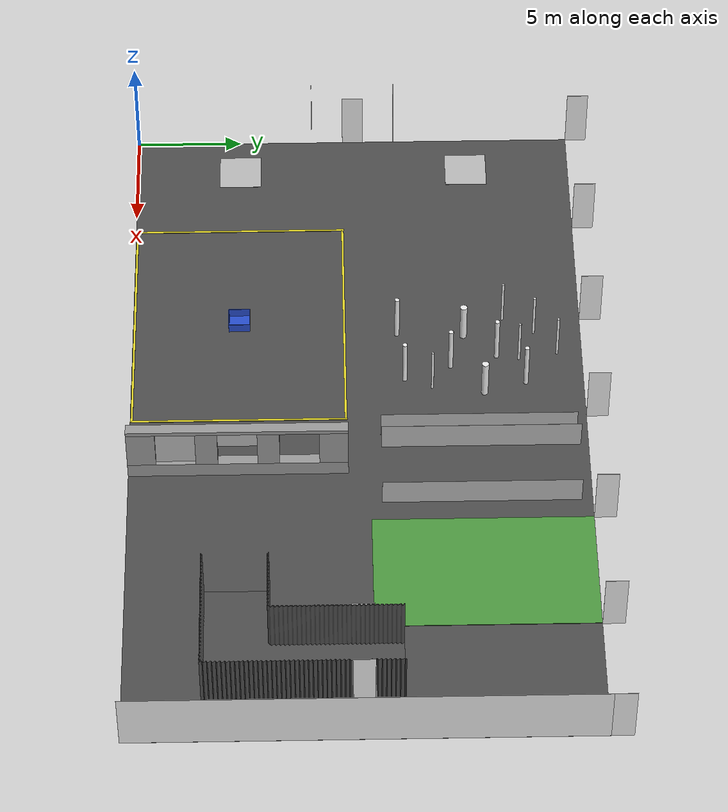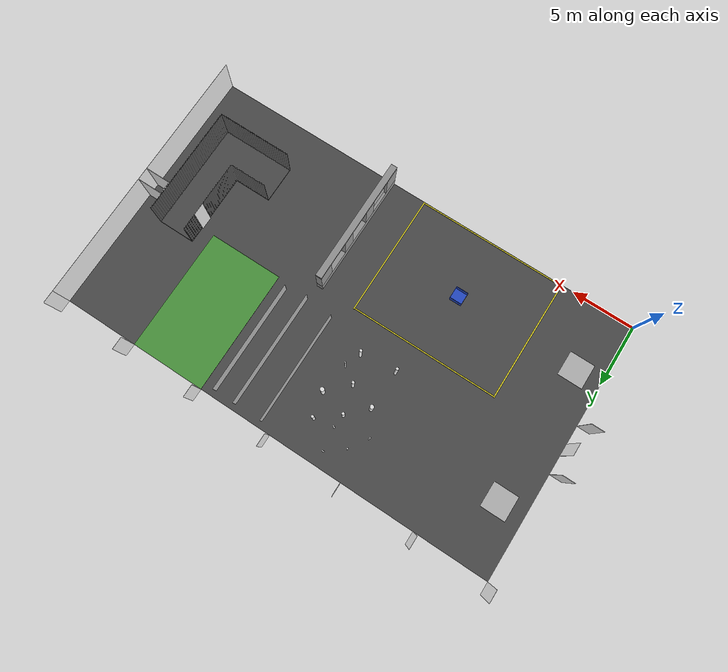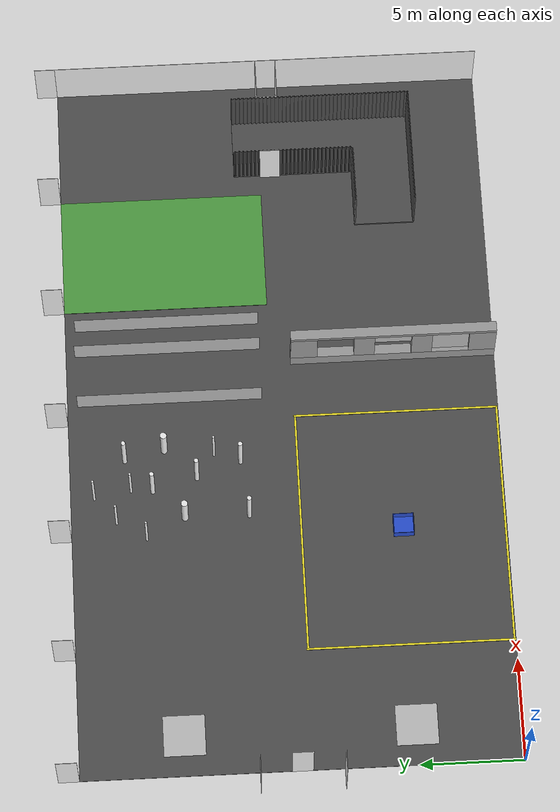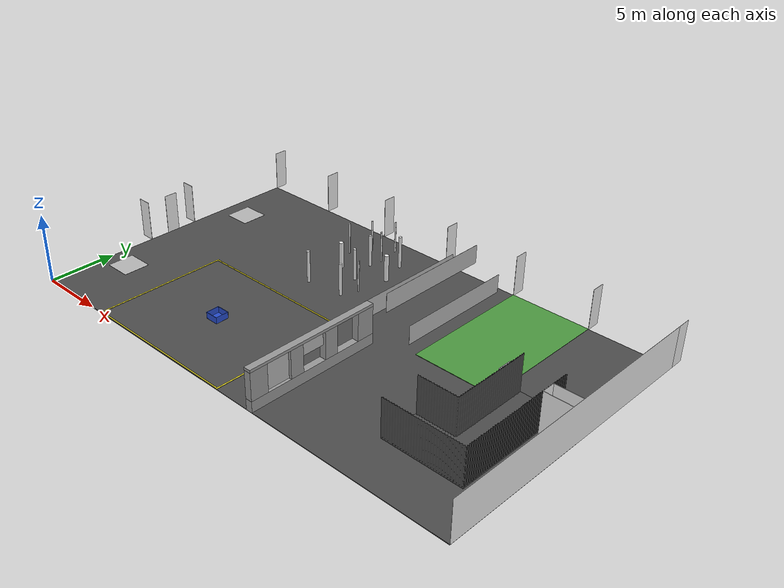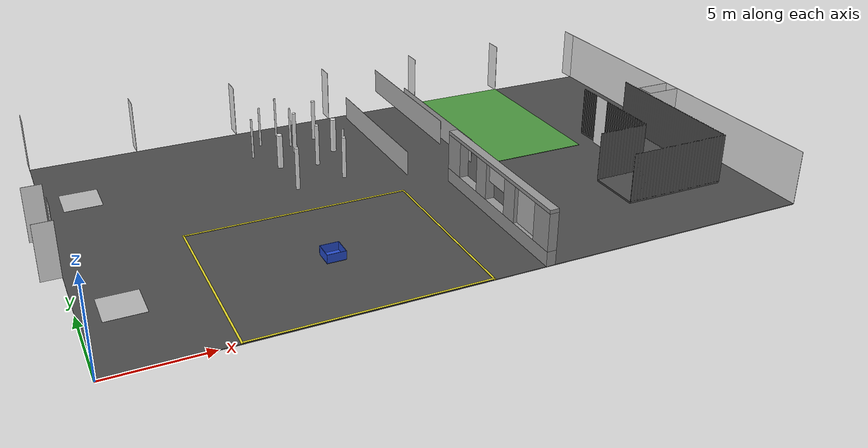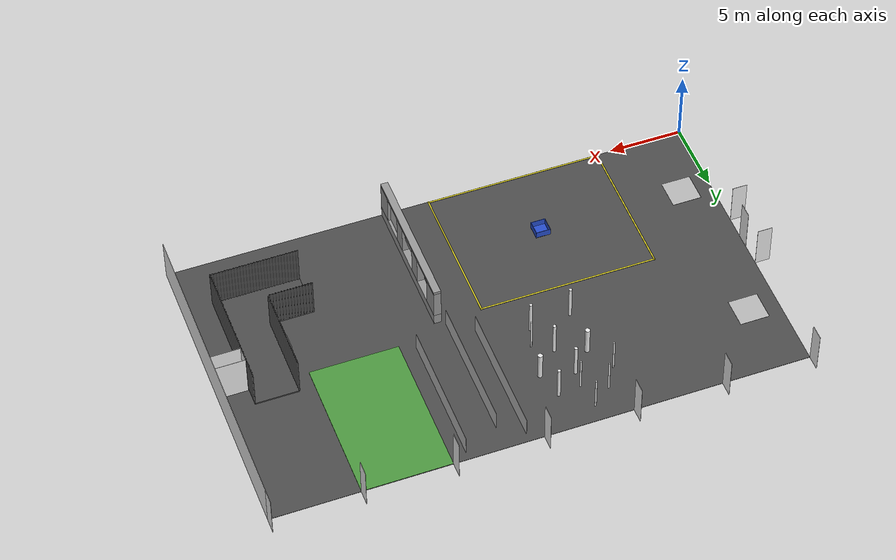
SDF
<sdf version="1.5">
 <world name="default">
  <scene><grid>false</grid><origin_visual>false</origin_visual></scene>
  <include><uri>model://sun</uri></include>
  <include><uri>model://AIGC2_ground</uri><pose>18.0 10.5 0.0 0 0 0</pose></include>
  <include><uri>model://AIGC2_start</uri><pose>2.0 16.0 0.0 0 0 0</pose></include>
  <include><uri>model://AIGC2_landing</uri><pose>2.0 5.0 0.0 0 0 0</pose></include>
  <include>
   <uri>model://AIGC2_wall_1m</uri>
   <name>AIGC2_wall_1m_1</name>
   <pose>0.0 10.5 0.0 0 0 -1.57079</pose>
  </include>
  <include>
   <uri>model://AIGC2_wall_1m</uri>
   <name>AIGC2_wall_1m_2</name>
   <pose>0.0 21.5 0.0 0 0 -1.57079</pose>
  </include>
  <include>
   <uri>model://AIGC2_wall_1m</uri>
   <name>AIGC2_wall_1m_3</name>
   <pose>6.0 21.5 0.0 0 0 -1.57079</pose>
  </include>
  <include>
   <uri>model://AIGC2_wall_1m</uri>
   <name>AIGC2_wall_1m_4</name>
   <pose>12.0 21.5 0.0 0 0 -1.57079</pose>
  </include>
  <include>
   <uri>model://AIGC2_wall_1m</uri>
   <name>AIGC2_wall_1m_5</name>
   <pose>18.0 21.5 0.0 0 0 -1.57079</pose>
  </include>
  <include>
   <uri>model://AIGC2_wall_1m</uri>
   <name>AIGC2_wall_1m_6</name>
   <pose>24.0 21.5 0.0 0 0 -1.57079</pose>
  </include>
  <include>
   <uri>model://AIGC2_wall_1m</uri>
   <name>AIGC2_wall_1m_7</name>
   <pose>30.0 21.5 0.0 0 0 -1.57079</pose>
  </include>
  <include>
   <uri>model://AIGC2_wall_1m</uri>
   <name>AIGC2_wall_1m_8</name>
   <pose>36.0 21.5 0.0 0 0 -1.57079</pose>
  </include>
  <include>
   <uri>model://AIGC2_wall_1m</uri>
   <name>AIGC2_wall_1m_9</name>
   <pose>31.0 10.5 0.0 0 0 -1.57079</pose>
  </include>
  <include>
   <uri>model://AIGC2_wall_1m</uri>
   <name>AIGC2_wall_1m_10</name>
   <pose>34.0 10.5 0.0 0 0 -1.57079</pose>
  </include>
  <include>
   <uri>model://AIGC2_wall_21m</uri>
   <name>AIGC2_wall_21m_1</name>
   <pose>36.0 10.5 0.0 0 0 -1.57079</pose>
  </include>
  <include>
   <uri>model://AIGC2_wall_2m</uri>
   <name>AIGC2_wall_2m_1</name>
   <pose>35.0 10.0 0.0 0 0 0</pose>
  </include>
  <include>
   <uri>model://AIGC2_wall_2m</uri>
   <name>AIGC2_wall_2m_2</name>
   <pose>35.0 11.0 0.0 0 0 0</pose>
  </include>
  <include>
   <uri>model://AIGC2_wall_1m</uri>
   <name>AIGC2_wall_1m_12</name>
   <pose>-0.5 12.5 0.0 0 0 0</pose>
  </include>
  <include>
   <uri>model://AIGC2_wall_1m</uri>
   <name>AIGC2_wall_1m_11</name>
   <pose>-0.5 8.5 0.0 0 0 0</pose>
  </include>
  <include>
   <uri>model://AIGC2_pole_30cm</uri>
   <name>AIGC2_pole_30cm_1</name>
   <pose>16.5 16.37 0.0 0 0 0</pose>
  </include>
  <include>
   <uri>model://AIGC2_pole_30cm</uri>
   <name>AIGC2_pole_30cm_2</name>
   <pose>12.96 15.5 0.0 0 0 0</pose>
  </include>
  <include>
   <uri>model://AIGC2_pole_20cm</uri>
   <name>AIGC2_pole_20cm_1</name>
   <pose>16.0 18.3 0.0 0 0 0</pose>
  </include>
  <include>
   <uri>model://AIGC2_pole_20cm</uri>
   <name>AIGC2_pole_20cm_2</name>
   <pose>14.35 17.0 0.0 0 0 0</pose>
  </include>
  <include>
   <uri>model://AIGC2_pole_20cm</uri>
   <name>AIGC2_pole_20cm_3</name>
   <pose>14.94 14.84 0.0 0 0 0</pose>
  </include>
  <include>
   <uri>model://AIGC2_pole_20cm</uri>
   <name>AIGC2_pole_20cm_4</name>
   <pose>15.7 12.69 0.0 0 0 0</pose>
  </include>
  <include>
   <uri>model://AIGC2_pole_20cm</uri>
   <name>AIGC2_pole_20cm_5</name>
   <pose>12.89 12.39 0.0 0 0 0</pose>
  </include>
  <include>
   <uri>model://AIGC2_pole_10cm</uri>
   <name>AIGC2_pole_10cm_1</name>
   <pose>11.93 17.37 0.0 0 0 0</pose>
  </include>
  <include>
   <uri>model://AIGC2_pole_10cm</uri>
   <name>AIGC2_pole_10cm_2</name>
   <pose>12.83 18.8 0.0 0 0 0</pose>
  </include>
  <include>
   <uri>model://AIGC2_pole_10cm</uri>
   <name>AIGC2_pole_10cm_3</name>
   <pose>16.15 13.96 0.0 0 0 0</pose>
  </include>
  <include>
   <uri>model://AIGC2_pole_10cm</uri>
   <name>AIGC2_pole_10cm_4</name>
   <pose>14.44 18.05 0.0 0 0 0</pose>
  </include>
  <include>
   <uri>model://AIGC2_pole_10cm</uri>
   <name>AIGC2_pole_10cm_5</name>
   <pose>14.14 19.84 0.0 0 0 0</pose>
  </include>
  <include><uri>model://AIGC2_net</uri><name>AIGCS_net_1</name><pose>23.0 16.0 0.0 0 0 0.0</pose></include>
  <include><uri>model://AIGC2_net</uri><name>AIGCS_net_2</name><pose>21.0 16.0 1.5 0 0 0.0</pose></include>
  <include><uri>model://AIGC2_net</uri><name>AIGCS_net_3</name><pose>19.0 16.0 0.0 0 0 0.0</pose></include>
  <include><uri>model://AIGC2_grass</uri><name>AIGCS_grass</name><pose>27.0 16.0 0.0 0 0 0.0</pose></include>
  <include>
   <uri>model://AIGC2_tunnel_2</uri>
   <name>AIGC2_tunnel</name>
   <pose>33.97 12.3 0.1 0 0 3.141592</pose>
  </include>
  <include><uri>model://AIGC2_window</uri><name>AIGC2_window</name><pose>21.0 5.0 0.0 0 0 0.0</pose></include>
  <include>
   <uri>model://AIGC2_window_glass</uri>
   <name>AIGC2_glass_1</name>
   <pose>21.0 2.2 0.8 0 0 0.0</pose>
  </include>
  <include>
   <uri>model://AIGC2_window_glass_half</uri>
   <name>AIGC2_glass_2</name>
   <pose>21.0 5.0 0.8 0 0 0.0</pose>
  </include>
  <include>
   <uri>model://AIGC2_wind_10m</uri>
   <name>AIGC2_wind_10m_1</name>
   <pose>12.0 9.925 0.0 0 0 0.0</pose>
  </include>
  <include>
   <uri>model://AIGC2_wind_10m</uri>
   <name>AIGC2_wind_10m_2</name>
   <pose>12.0 0.075 0.0 0 0 0.0</pose>
  </include>
  <include>
   <uri>model://AIGC2_wind_9m</uri>
   <name>AIGC2_wind_9m_1</name>
   <pose>18.0 5.0 0.0 0 0 0.0</pose>
  </include>
  <include>
   <uri>model://AIGC2_wind_9m</uri>
   <name>AIGC2_wind_9m_2</name>
   <pose>6.0 5.0 0.0 0 0 0.0</pose>
  </include>
  <include><uri>model://AIGC2_box</uri><name>AIGC2_box</name><pose>12.0 5.0 0.0 0 0 0.0</pose></include>
  <physics name="default_physics" default="0" type="ode">
   <gravity>0 0 -9.8066</gravity>
   <ode>
    <solver>
     <type>quick</type>
     <iters>10</iters>
     <sor>1.3</sor>
     <use_dynamic_moi_rescaling>0</use_dynamic_moi_rescaling>
    </solver>
    <constraints>
     <cfm>0</cfm>
     <erp>0.2</erp>
     <contact_max_correcting_vel>100</contact_max_correcting_vel>
     <contact_surface_layer>0.001</contact_surface_layer>
    </constraints>
   </ode>
   <max_step_size>0.004</max_step_size>
   <real_time_factor>1</real_time_factor>
   <real_time_update_rate>250</real_time_update_rate>
   <magnetic_field>6.0e-6 2.3e-5 -4.2e-5</magnetic_field>
  </physics>
 </world>
</sdf>

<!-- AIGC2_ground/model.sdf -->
<sdf version="1.5">
  <model name="AIGC2_ground">
    <static>true</static>
    <link name="link">
      <collision name="collision">
        <geometry>
          <box>
            <size>36 21 .04</size>
          </box>
        </geometry>
      </collision>
      <visual name="visual">
        <cast_shadows>false</cast_shadows>
        <geometry>
          <box>
            <size>36 21 .04</size>
          </box>
        </geometry>
        <material>
          <script>
            <uri>model://AIGC2_ground/materials/scripts</uri>
            <uri>model://AIGC2_ground/materials/textures</uri>
            <name>vrc/asphalt</name>
          </script>
        </material>
      </visual>
    </link>
  </model>
</sdf>

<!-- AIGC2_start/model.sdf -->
<sdf version="1.5">
  <model name="AIGC2_start">
    <static>true</static>
    <link name="link">
      <pose>0 0 0.0 0 0 0</pose>
      <collision name="collision">
        <geometry>
          <box>
            <size>2.0 2.0 0.05</size>
          </box>
        </geometry>
      </collision>
      <visual name="visual">
        <cast_shadows>false</cast_shadows>
        <geometry>
          <box>
            <size>2.0 2.0 0.05</size>
          </box>
        </geometry>
        <material>
          <script>
            <uri>model://AIGC2_start/materials/scripts</uri>
            <uri>model://AIGC2_start/materials/textures</uri>
            <name>vrc/start</name>
          </script>
        </material>
      </visual>
    </link>
  </model>
</sdf>

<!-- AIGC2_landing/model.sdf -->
<sdf version="1.5">
  <model name="AIGC2_landing">
    <static>true</static>
    <link name="link">
      <pose>0 0 0.0 0 0 0</pose>
      <collision name="collision">
        <geometry>
          <box>
            <size>2.0 2.0 0.05</size>
          </box>
        </geometry>
      </collision>
      <visual name="visual">
        <cast_shadows>false</cast_shadows>
        <geometry>
          <box>
            <size>2.0 2.0 0.05</size>
          </box>
        </geometry>
        <material>
          <script>
            <uri>model://AIGC2_landing/materials/scripts</uri>
            <uri>model://AIGC2_landing/materials/textures</uri>
            <name>vrc/landing</name>
          </script>
        </material>
      </visual>
    </link>
  </model>
</sdf>

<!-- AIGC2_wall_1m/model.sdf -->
<sdf version="1.5">
  <model name="AIGC2_wall_1m">
    <static>true</static>
    <link name="link">
      <pose>0 0 1.5 0 0 0</pose>
      <collision name="collision">
        <geometry>
          <box>
            <size>1.0 0.02 3.0</size>
          </box>
        </geometry>
      </collision>
      <visual name="visual">
        <cast_shadows>false</cast_shadows>
        <geometry>
          <box>
            <size>1.0 0.02 3.0</size>
          </box>
        </geometry>
        <material>
			<script>
				<name>Gazebo/White</name>
				<uri>file://media/materials/scripts/gazebo.material</uri>
			</script>
        </material>
      </visual>
    </link>
  </model>
</sdf>

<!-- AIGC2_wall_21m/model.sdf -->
<sdf version="1.5">
  <model name="AIGC2_wall_21m">
    <static>true</static>
    <link name="link">
      <pose>0 0 1.5 0 0 0</pose>
      <collision name="collision">
        <geometry>
          <box>
            <size>21.0 0.02 3.0</size>
          </box>
        </geometry>
      </collision>
      <visual name="visual">
        <cast_shadows>false</cast_shadows>
        <geometry>
          <box>
            <size>21.0 0.02 3.0</size>
          </box>
        </geometry>
        <material>
			<script>
				<name>Gazebo/White</name>
				<uri>file://media/materials/scripts/gazebo.material</uri>
			</script>
        </material>
      </visual>
    </link>
  </model>
</sdf>

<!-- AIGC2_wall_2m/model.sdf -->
<sdf version="1.5">
  <model name="AIGC2_wall_2m">
    <static>true</static>
    <link name="link">
      <pose>0 0 1.5 0 0 0</pose>
      <collision name="collision">
        <geometry>
          <box>
            <size>2.0 0.02 3.0</size>
          </box>
        </geometry>
      </collision>
      <visual name="visual">
        <cast_shadows>false</cast_shadows>
        <geometry>
          <box>
            <size>2.0 0.02 3.0</size>
          </box>
        </geometry>
        <material>
			<script>
				<name>Gazebo/White</name>
				<uri>file://media/materials/scripts/gazebo.material</uri>
			</script>
        </material>
      </visual>
    </link>
  </model>
</sdf>

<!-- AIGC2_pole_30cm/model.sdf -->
<sdf version="1.5">
  <model name="AIGC2_pole_30cm">
    <static>true</static>
    <link name="link">
      <pose>0 0 1.0 0 0 0</pose>
      <collision name="collision">
        <geometry>
            <cylinder>
              <radius>.159</radius>
              <length>2.0</length>
            </cylinder>
        </geometry>
      </collision>
      <visual name="visual">
        <cast_shadows>true</cast_shadows>
        <geometry>
            <cylinder>
              <radius>.159</radius>
              <length>2.0</length>
            </cylinder>
        </geometry>
        <material>
          <script>
            <name>Gazebo/White</name>
            <uri>file://media/materials/scripts/gazebo.material</uri>
          </script>
        </material>
      </visual>
    </link>
  </model>
</sdf>

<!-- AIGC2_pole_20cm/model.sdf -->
<sdf version="1.5">
  <model name="AIGC2_pole_20cm">
    <static>true</static>
    <link name="link">
      <pose>0 0 1.3 0 0 0</pose>
      <collision name="collision">
        <geometry>
            <cylinder>
              <radius>.108</radius>
              <length>2.6</length>
            </cylinder>
        </geometry>
      </collision>
      <visual name="visual">
        <cast_shadows>true</cast_shadows>
        <geometry>
            <cylinder>
              <radius>.108</radius>
              <length>2.4</length>
            </cylinder>
        </geometry>
        <material>
          <script>
            <name>Gazebo/White</name>
            <uri>file://media/materials/scripts/gazebo.material</uri>
          </script>
        </material>
      </visual>
    </link>
  </model>
</sdf>

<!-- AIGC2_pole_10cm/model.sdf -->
<sdf version="1.5">
  <model name="AIGC2_pole_10cm">
    <static>true</static>
    <link name="link">
      <pose>0 0 1.2 0 0 0</pose>
      <collision name="collision">
        <geometry>
            <cylinder>
              <radius>.057</radius>
              <length>2.4</length>
            </cylinder>
        </geometry>
      </collision>
      <visual name="visual">
        <cast_shadows>true</cast_shadows>
        <geometry>
            <cylinder>
              <radius>.057</radius>
              <length>2.4</length>
            </cylinder>
        </geometry>
        <material>
          <script>
            <name>Gazebo/White</name>
            <uri>file://media/materials/scripts/gazebo.material</uri>
          </script>
        </material>
      </visual>
    </link>
  </model>
</sdf>

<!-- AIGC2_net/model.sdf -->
<sdf version="1.5">
  <model name="AIGC2_net">
    <static>true</static>
    <link name="link">
      <pose>0 0 0.75 0 0 0</pose>
      <collision name="collision">
        <geometry>
          <box>
            <size>0.01 9.0 1.3</size>
          </box>
        </geometry>
      </collision>
      <visual name="visual">
        <cast_shadows>false</cast_shadows>
        <geometry>
          <box>
            <size>0.01 9.0 1.4</size>
          </box>
        </geometry>
        <material>
          <script>
            <uri>model://AIGC2_net/materials/scripts</uri>
            <uri>model://AIGC2_net/materials/textures</uri>
            <name>vrc/tennis_net</name>
          </script>
        </material>
      </visual>
    </link>
  </model>
</sdf>

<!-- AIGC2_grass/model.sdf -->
<sdf version="1.5">
  <model name="AIGC2_grass">
    <static>true</static>
    <link name="link">
      <pose>0 0 0.025 0 0 0</pose>
      <collision name="collision">
        <geometry>
          <box>
            <size>6.0 10.0 0.05</size>
          </box>
        </geometry>
      </collision>
      <visual name="visual">
        <cast_shadows>false</cast_shadows>
        <geometry>
          <box>
            <size>6.0 10.0 0.05</size>
          </box>
        </geometry>
        <material>
          <script>
            <uri>model://AIGC2_grass/materials/scripts</uri>
            <uri>model://AIGC2_grass/materials/textures</uri>
            <name>vrc/grass</name>
          </script>
        </material>
      </visual>
    </link>
  </model>
</sdf>

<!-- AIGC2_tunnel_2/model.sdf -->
<sdf version="1.5">
  <model name="AIGC2_tunnel_2">
    <static>true</static>
	<link name='chassis1'>
		<collision name='collision1'>
			<geometry>
				<mesh>
				<scale>0.098 0.098 0.098</scale>
				<uri>model://AIGC2_tunnel_2/aigc_tunnel.stl</uri></mesh>
			</geometry>
		</collision>

		<visual name='visual1'>
			<geometry>
				<mesh>
				<scale>0.098 0.098 0.098</scale>
				<uri>model://AIGC2_tunnel_2/aigc_tunnel.stl</uri></mesh>
			</geometry>
		    <material>
		      <script>
		        <name>Gazebo/DarkGrey</name>
		        <uri>file://media/materials/scripts/gazebo.material</uri>
		      </script>
		    </material>
		</visual>
	</link>
  </model>
</sdf>

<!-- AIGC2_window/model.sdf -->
<sdf version="1.5">
  <model name="AIGC2_window">
    <static>true</static>
    <link name="link">
      <pose>0 0 0.4 0 0 0</pose>
      <collision name="collision">
        <geometry>
          <box>
            <size>0.5 10.0 0.8</size>
          </box>
        </geometry>
      </collision>
      <visual name="visual">
        <cast_shadows>false</cast_shadows>
        <geometry>
          <box>
            <size>0.5 10.0 0.8</size>
          </box>
        </geometry>
        <material>
          <script>
            <uri>model://AIGC2_window/materials/scripts</uri>
            <uri>model://AIGC2_window/materials/textures</uri>
            <name>vrc/grey_wall</name>
          </script>
        </material>
      </visual>
    </link>

    <link name="link1">
      <pose>0 0 2.9 0 0 0</pose>
      <collision name="collision">
        <geometry>
          <box>
            <size>0.5 10.0 0.2</size>
          </box>
        </geometry>
      </collision>
      <visual name="visual">
        <cast_shadows>false</cast_shadows>
        <geometry>
          <box>
            <size>0.5 10.0 0.2</size>
          </box>
        </geometry>
        <material>
          <script>
            <uri>model://AIGC2_window/materials/scripts</uri>
            <uri>model://AIGC2_window/materials/textures</uri>
            <name>vrc/grey_wall</name>
          </script>
        </material>
      </visual>
    </link>

    <link name="link2">
      <pose>0 1.4 1.8 0 0 0</pose>
      <collision name="collision">
        <geometry>
          <box>
            <size>0.5 1.0 2.0</size>
          </box>
        </geometry>
      </collision>
      <visual name="visual">
        <cast_shadows>false</cast_shadows>
        <geometry>
          <box>
            <size>0.5 1.0 2.0</size>
          </box>
        </geometry>
        <material>
          <script>
            <uri>model://AIGC2_window/materials/scripts</uri>
            <uri>model://AIGC2_window/materials/textures</uri>
            <name>vrc/grey_wall</name>
          </script>
        </material>
      </visual>
    </link>

    <link name="link3">
      <pose>0 -1.4 1.8 0 0 0</pose>
      <collision name="collision">
        <geometry>
          <box>
            <size>0.5 1.0 2.0</size>
          </box>
        </geometry>
      </collision>
      <visual name="visual">
        <cast_shadows>false</cast_shadows>
        <geometry>
          <box>
            <size>0.5 1.0 2.0</size>
          </box>
        </geometry>
        <material>
          <script>
            <uri>model://AIGC2_window/materials/scripts</uri>
            <uri>model://AIGC2_window/materials/textures</uri>
            <name>vrc/grey_wall</name>
          </script>
        </material>
      </visual>
    </link>

    <link name="link4">
      <pose>0 4.35 1.8 0 0 0</pose>
      <collision name="collision">
        <geometry>
          <box>
            <size>0.5 1.3 2.0</size>
          </box>
        </geometry>
      </collision>
      <visual name="visual">
        <cast_shadows>false</cast_shadows>
        <geometry>
          <box>
            <size>0.5 1.3 2.0</size>
          </box>
        </geometry>
        <material>
          <script>
            <uri>model://AIGC2_window/materials/scripts</uri>
            <uri>model://AIGC2_window/materials/textures</uri>
            <name>vrc/grey_wall</name>
          </script>
        </material>
      </visual>
    </link>

    <link name="link5">
      <pose>0 -4.35 1.8 0 0 0</pose>
      <collision name="collision">
        <geometry>
          <box>
            <size>0.5 1.3 2.0</size>
          </box>
        </geometry>
      </collision>
      <visual name="visual">
        <cast_shadows>false</cast_shadows>
        <geometry>
          <box>
            <size>0.5 1.3 2.0</size>
          </box>
        </geometry>
        <material>
          <script>
            <uri>model://AIGC2_window/materials/scripts</uri>
            <uri>model://AIGC2_window/materials/textures</uri>
            <name>vrc/grey_wall</name>
          </script>
        </material>
      </visual>
    </link>

  </model>
</sdf>

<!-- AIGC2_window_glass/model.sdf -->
<sdf version="1.5">
  <model name="AIGC2_window_glass">
    <static>true</static>
    <link name="link">
      <pose>0 0 1.0 0 0 0</pose>
      <collision name="collision">
        <geometry>
          <box>
            <size>0.1 1.8 2.0</size>
          </box>
        </geometry>
      </collision>
      <visual name="visual">
        <cast_shadows>false</cast_shadows>
        <geometry>
          <box>
            <size>0.1 1.8 2.0</size>
          </box>
        </geometry>
        <material>
          <script>
            <uri>model://AIGC2_window_glass/materials/scripts</uri>
            <uri>model://AIGC2_window_glass/materials/textures</uri>
            <name>vrc/window</name>
          </script>
        </material>
      </visual>
    </link>
  </model>
</sdf>

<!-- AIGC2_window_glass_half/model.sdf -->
<sdf version="1.5">
  <model name="AIGC2_window_glass_half">
    <static>true</static>
    <link name="link">
      <pose>0 0 1.5 0 0 0</pose>
      <collision name="collision">
        <geometry>
          <box>
            <size>0.1 1.8 1.0</size>
          </box>
        </geometry>
      </collision>
      <visual name="visual">
        <cast_shadows>false</cast_shadows>
        <geometry>
          <box>
            <size>0.1 1.8 1.0</size>
          </box>
        </geometry>
        <material>
          <script>
            <uri>model://AIGC2_window_glass/materials/scripts</uri>
            <uri>model://AIGC2_window_glass/materials/textures</uri>
            <name>vrc/window</name>
          </script>
        </material>
      </visual>
    </link>
  </model>
</sdf>

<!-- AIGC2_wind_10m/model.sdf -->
<sdf version="1.5">
  <model name="AIGC2_wind_10m">
    <static>true</static>
    <link name="link">
      <pose>0 0 0.02 0 0 0</pose>
      <collision name="collision">
        <geometry>
          <box>
            <size>12.0 0.1 0.05</size>
          </box>
        </geometry>
      </collision>
      <visual name="visual">
        <cast_shadows>false</cast_shadows>
        <geometry>
          <box>
            <size>12.0 0.1 0.05</size>
          </box>
        </geometry>
        <material>
          <script>
		    <name>Gazebo/Yellow</name>
		    <uri>file://media/materials/scripts/gazebo.material</uri>
          </script>
        </material>
      </visual>
    </link>
  </model>
</sdf>

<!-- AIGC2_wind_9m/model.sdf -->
<sdf version="1.5">
  <model name="AIGC2_wind_9m">
    <static>true</static>
    <link name="link">
      <pose>0 0 0.02 0 0 0</pose>
      <collision name="collision">
        <geometry>
          <box>
            <size>0.1 10.0 0.05</size>
          </box>
        </geometry>
      </collision>
      <visual name="visual">
        <cast_shadows>false</cast_shadows>
        <geometry>
          <box>
            <size>0.1 10.0 0.05</size>
          </box>
        </geometry>
        <material>
          <script>
		    <name>Gazebo/Yellow</name>
		    <uri>file://media/materials/scripts/gazebo.material</uri>
          </script>
        </material>
      </visual>
    </link>
  </model>
</sdf>

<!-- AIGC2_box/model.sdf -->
<sdf version="1.5">
  <model name="AIGC2_box">
    <static>true</static>
    <link name="link">
      <pose>0.0 0 0 0 0 0</pose>
      <collision name="collision">
        <geometry>
          <box>
            <size>1.0 1.0 0.1</size>
          </box>
        </geometry>
      </collision>
      <visual name="visual">
        <cast_shadows>false</cast_shadows>
        <geometry>
          <box>
            <size>1.0 1.0 0.1</size>
          </box>
        </geometry>
        <material>
			<script>
				<name>Gazebo/Blue</name>
				<uri>file://media/materials/scripts/gazebo.material</uri>
			</script>
        </material>
      </visual>
    </link>

    <link name="link1">
      <pose>0.0 0.49 0.25 0 0 0</pose>
      <collision name="collision">
        <geometry>
          <box>
            <size>1.0 0.02 0.5</size>
          </box>
        </geometry>
      </collision>
      <visual name="visual">
        <cast_shadows>false</cast_shadows>
        <geometry>
          <box>
            <size>1.0 0.02 0.5</size>
          </box>
        </geometry>
        <material>
			<script>
				<name>Gazebo/Blue</name>
				<uri>file://media/materials/scripts/gazebo.material</uri>
			</script>
        </material>
      </visual>
    </link>

    <link name="link2">
      <pose>0.0 -0.49 0.25 0 0 0</pose>
      <collision name="collision">
        <geometry>
          <box>
            <size>1.0 0.02 0.5</size>
          </box>
        </geometry>
      </collision>
      <visual name="visual">
        <cast_shadows>false</cast_shadows>
        <geometry>
          <box>
            <size>1.0 0.02 0.5</size>
          </box>
        </geometry>
        <material>
			<script>
				<name>Gazebo/Blue</name>
				<uri>file://media/materials/scripts/gazebo.material</uri>
			</script>
        </material>
      </visual>
    </link>

    <link name="link3">
      <pose>0.49 0.0 0.25 0 0 0</pose>
      <collision name="collision">
        <geometry>
          <box>
            <size>0.02 1.0 0.5</size>
          </box>
        </geometry>
      </collision>
      <visual name="visual">
        <cast_shadows>false</cast_shadows>
        <geometry>
          <box>
            <size>0.02 1.0 0.5</size>
          </box>
        </geometry>
        <material>
			<script>
				<name>Gazebo/Blue</name>
				<uri>file://media/materials/scripts/gazebo.material</uri>
			</script>
        </material>
      </visual>
    </link>

    <link name="link4">
      <pose>-0.49 0.0 0.25 0 0 0</pose>
      <collision name="collision">
        <geometry>
          <box>
            <size>0.02 1.0 0.5</size>
          </box>
        </geometry>
      </collision>
      <visual name="visual">
        <cast_shadows>false</cast_shadows>
        <geometry>
          <box>
            <size>0.02 1.0 0.5</size>
          </box>
        </geometry>
        <material>
			<script>
				<name>Gazebo/Blue</name>
				<uri>file://media/materials/scripts/gazebo.material</uri>
			</script>
        </material>
      </visual>
    </link>

  </model>
</sdf>
